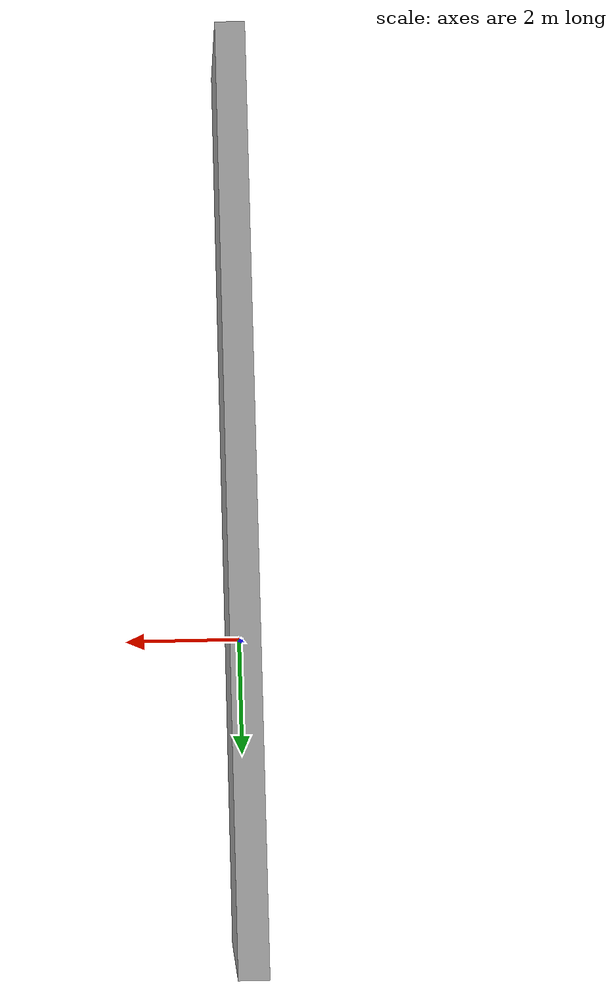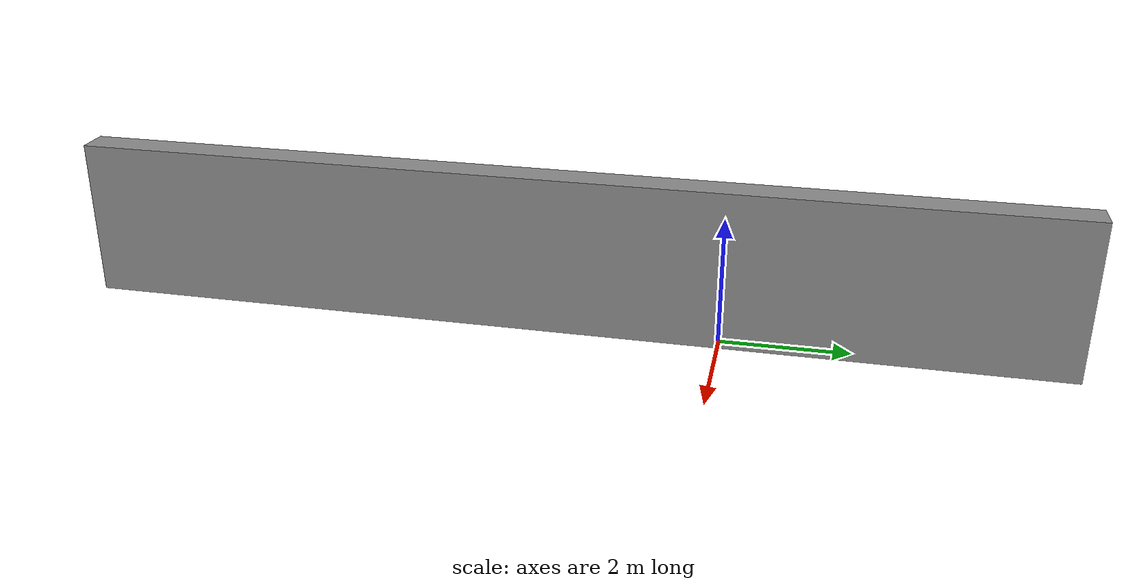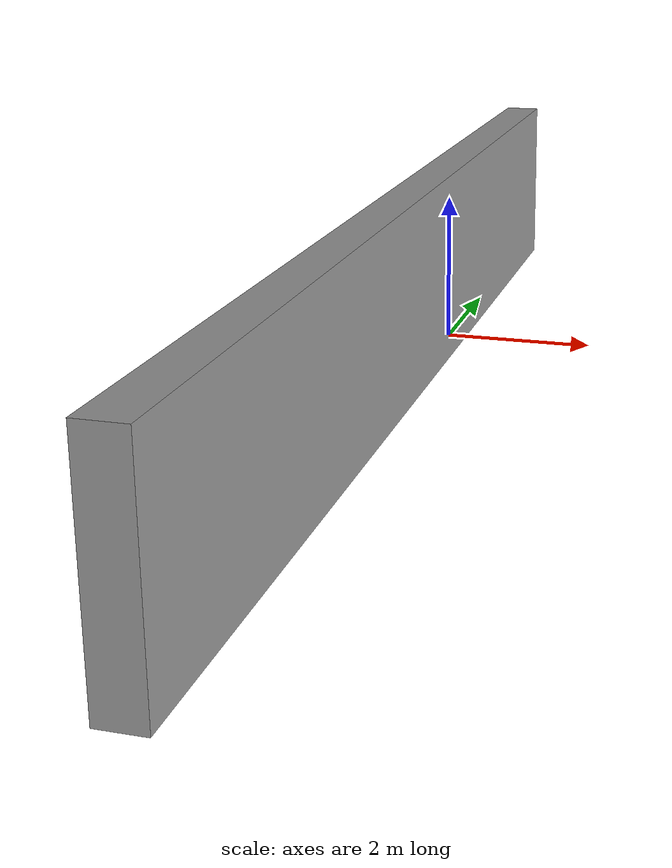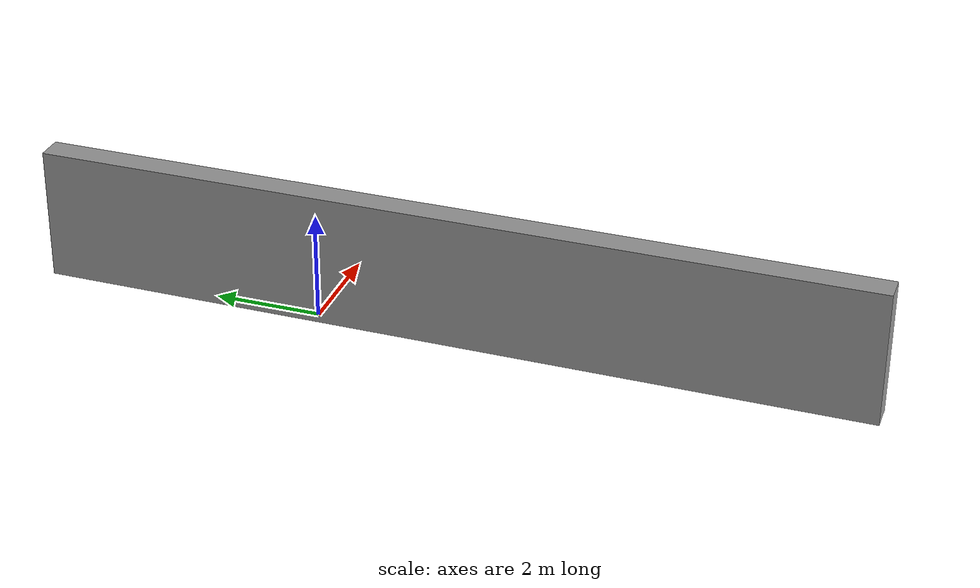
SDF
<?xml version='1.0'?>
<sdf version='1.6'>
  <model name='wall_15'>
    <pose frame=''>0 -2.5 0 0 -0 0</pose>
    <link name='Wall_15'>
      <collision name='Wall_15_Collision'>
        <geometry>
          <box>
            <size>15.5 0.5 2.5</size>
          </box>
        </geometry>
        <pose frame=''>0 0 1.25 0 -0 0</pose>
      </collision>
      <visual name='Wall_15_Visual'>
        <pose frame=''>0 0 1.25 0 -0 0</pose>
        <geometry>
          <box>
            <size>15.5 0.5 2.5</size>
          </box>
        </geometry>
        <material>
          <script>
            <uri>file://media/materials/scripts/gazebo.material</uri>
            <name>Gazebo/Grey</name>
          </script>
          <ambient>1 1 1 1</ambient>
        </material>
        <meta>
          <layer>0</layer>
        </meta>
      </visual>
      <pose frame=''>0 0 0 0 -0 -1.5708</pose>
    </link>
    <static>1</static>
  </model>
</sdf>
